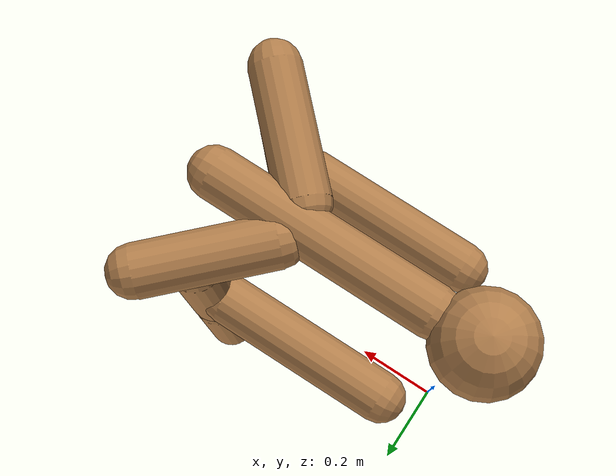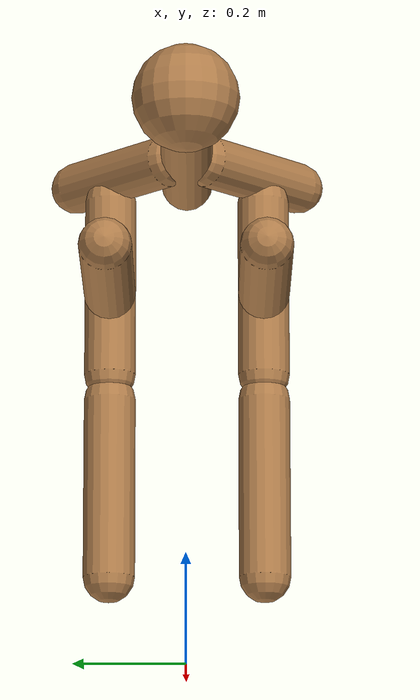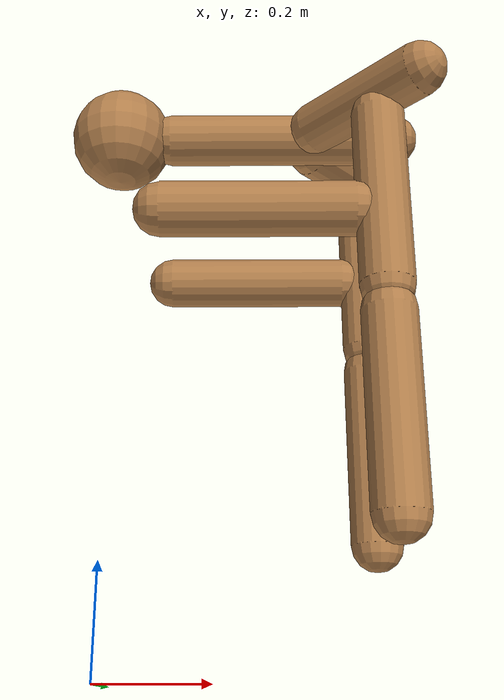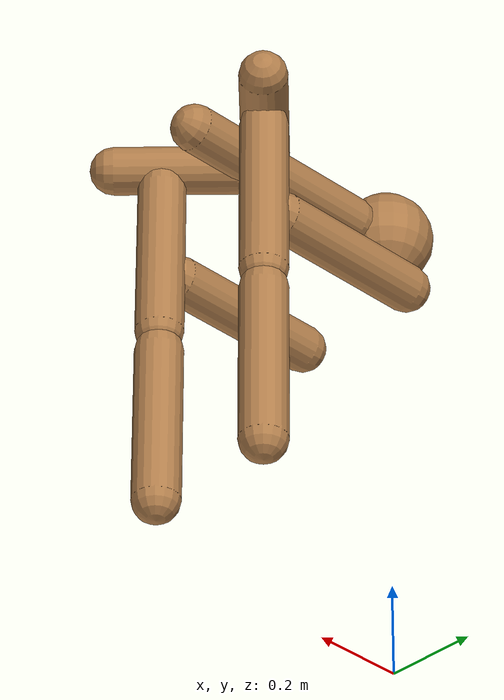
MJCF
<?xml version='1.0' encoding='UTF-8'?>
<!-- Universal Animal Template: unimal -->
<mujoco model="unimal">
  <compiler angle="degree"/>
  <size njmax="2000" nconmax="500"/>
  <option timestep=".005">
    <flag filterparent="disable"/>
  </option>
  <!-- Common defaults to make search space tractable -->
  <default>
    <!-- Define motor defaults -->
    <motor ctrlrange="-1 1" ctrllimited="true"/>
    <!-- Define joint defaults -->
    <default class="normal_joint">
      <joint type="hinge" damping="1" stiffness="1" armature="1" limited="true" range="-120 120" solimplimit="0 0.99 0.01"/>
    </default>
    <default class="walker_joint">
      <joint type="hinge" damping="0.2" stiffness="1" armature=".01" limited="true" range="-120 120" solimplimit="0 0.99 0.01"/>
    </default>
    <default class="stiff_joint">
      <joint type="hinge" damping="5" stiffness="10" armature=".01" limited="true" solimplimit="0 0.99 0.01"/>
    </default>
    <default class="free">
      <joint limited="false" damping="0" armature="0" stiffness="0"/>
    </default>
    <default class="growth_site">
      <site size="1e-6 1e-6 1e-6"/>
    </default>
    <default class="torso_growth_site">
      <site size="1e-6 1e-6 1e-6"/>
    </default>
    <default class="mirror_growth_site">
      <site size="1e-6 1e-6 1e-6"/>
    </default>
    <default class="btm_pos_site">
      <site size="1e-6 1e-6 1e-6"/>
    </default>
    <default class="box_face_site">
      <site size="1e-6 1e-6 1e-6"/>
    </default>
    <default class="imu_vel">
      <site type="box" size="0.05" rgba="1 0 0 0"/>
    </default>
    <default class="touch_site">
      <site group="3" rgba="0 0 1 .3"/>
    </default>
    <default class="food_site">
      <site material="food" size="0.15"/>
    </default>
    <!-- Define geom defaults -->
    <geom type="capsule" condim="3" friction="0.7 0.1 0.1" material="self"/>
  </default>
  <worldbody>
    <light diffuse="1 1 1" directional="true" exponent="1" pos="0 0 8" specular="0.1 0.1 0.1" dir="0 0 -1"/>
    <!-- Programatically generated xml goes here -->
    <body name="torso/0" pos="0 0 1.05">
      <joint name="root" type="free" class="free"/>
      <site name="root" class="imu_vel"/>
      <geom name="torso/0" type="sphere" size="0.1" condim="3" density="900"/>
      <camera name="side" pos="0 -7 2" xyaxes="1 0 0 0 1 2" mode="trackcom"/>
      <site name="torso/0" class="growth_site" pos="0 0 0"/>
      <site name="torso/btm_pos/0" class="btm_pos_site" pos="0 0 -0.1"/>
      <site name="torso/touch/0" class="touch_site" size="0.11"/>
      <site name="torso/horizontal_y/0" class="torso_growth_site" pos="-0.1 0 0"/>
      <body name="limb/15" pos="0.1 0.0 0.0">
        <joint name="limbx/15" type="hinge" class="normal_joint" range="-60 0" pos="-0.05 0.0 0.0" axis="0.0 0.0 1.0"/>
        <geom name="limb/15" type="capsule" fromto="0.0 0.0 0.0 0.45 0.0 0.0" size="0.05" density="1000"/>
        <site name="limb/mid/15" class="growth_site" pos="0.25 0.0 0.0"/>
        <site name="limb/btm/15" class="growth_site" pos="0.45 0.0 0.0"/>
        <site name="limb/btm_pos/15" class="btm_pos_site" pos="0.45 0.0 0.0"/>
        <site name="limb/touch/15" class="touch_site" size="0.060000000000000005" fromto="0.0 0.0 0.0 0.45 0.0 0.0" type="capsule"/>
        <body name="limb/16" pos="0.29 0.04 0.0">
          <joint name="limby/16" type="hinge" class="normal_joint" range="-90 0" pos="-0.04 -0.04 0.0" axis="-0.5 0.5 0.7071"/>
          <geom name="limb/16" type="capsule" fromto="0.0 0.0 0.0 0.18 0.18 0.0" size="0.05" density="1000"/>
          <site name="limb/mid/16" class="mirror_growth_site" pos="0.11 0.11 0.0"/>
          <site name="limb/btm/16" class="mirror_growth_site" pos="0.18 0.18 0.0"/>
          <site name="limb/btm_pos/16" class="btm_pos_site" pos="0.18 0.18 0.0"/>
          <site name="limb/touch/16" class="touch_site" size="0.060000000000000005" fromto="0.0 0.0 0.0 0.18 0.18 0.0" type="capsule"/>
          <body name="limb/18" pos="0.11 0.11 -0.05">
            <joint name="limbx/18" type="hinge" class="normal_joint" range="0 45" pos="0.0 0.0 0.05" axis="1.0 0.0 0.0"/>
            <joint name="limby/18" type="hinge" class="normal_joint" range="0 30" pos="0.0 0.0 0.05" axis="0.0 1.0 0.0"/>
            <geom name="limb/18" type="capsule" fromto="0.0 0.0 0.0 0.0 0.0 -0.35" size="0.05" density="1000"/>
            <site name="limb/mid/18" class="mirror_growth_site" pos="0.0 0.0 -0.2"/>
            <site name="limb/btm/18" class="mirror_growth_site" pos="0.0 0.0 -0.35"/>
            <site name="limb/btm_pos/18" class="btm_pos_site" pos="0.0 0.0 -0.4"/>
            <site name="limb/touch/18" class="touch_site" size="0.060000000000000005" fromto="0.0 0.0 0.0 0.0 0.0 -0.35" type="capsule"/>
            <body name="limb/20" pos="-0.05 0.0 -0.2">
              <joint name="limbx/20" type="hinge" class="normal_joint" range="-30 0" pos="0.05 0.0 0.0" axis="0.0 0.0 -1.0"/>
              <geom name="limb/20" type="capsule" fromto="0.0 0.0 0.0 -0.35 0.0 0.0" size="0.05" density="1000"/>
              <site name="limb/mid/20" class="mirror_growth_site" pos="-0.2 0.0 0.0"/>
              <site name="limb/btm/20" class="mirror_growth_site" pos="-0.35 0.0 0.0"/>
              <site name="limb/btm_pos/20" class="btm_pos_site" pos="-0.4 0.0 0.0"/>
              <site name="limb/touch/20" class="touch_site" size="0.060000000000000005" fromto="0.0 0.0 0.0 -0.35 0.0 0.0" type="capsule"/>
            </body>
            <body name="limb/22" pos="0.0 0.0 -0.39999999999999997">
              <joint name="limbx/22" type="hinge" class="normal_joint" range="-30 30" pos="0.0 0.0 0.05" axis="1.0 0.0 0.0"/>
              <joint name="limby/22" type="hinge" class="normal_joint" range="0 30" pos="0.0 0.0 0.05" axis="0.0 1.0 0.0"/>
              <geom name="limb/22" type="capsule" fromto="0.0 0.0 0.0 0.0 0.0 -0.35" size="0.05" density="1000"/>
              <site name="limb/mid/22" class="mirror_growth_site" pos="0.0 0.0 -0.2"/>
              <site name="limb/btm/22" class="mirror_growth_site" pos="0.0 0.0 -0.35"/>
              <site name="limb/btm_pos/22" class="btm_pos_site" pos="0.0 0.0 -0.4"/>
              <site name="limb/touch/22" class="touch_site" size="0.060000000000000005" fromto="0.0 0.0 0.0 0.0 0.0 -0.35" type="capsule"/>
            </body>
          </body>
        </body>
        <body name="limb/17" pos="0.29 -0.04 0.0">
          <joint name="limby/17" type="hinge" class="normal_joint" range="-90 0" pos="-0.04 0.04 0.0" axis="0.5 0.5 -0.7071"/>
          <geom name="limb/17" type="capsule" fromto="0.0 0.0 0.0 0.18 -0.18 0.0" size="0.05" density="1000"/>
          <site name="limb/mid/17" class="mirror_growth_site" pos="0.11 -0.11 0.0"/>
          <site name="limb/btm/17" class="mirror_growth_site" pos="0.18 -0.18 0.0"/>
          <site name="limb/btm_pos/17" class="btm_pos_site" pos="0.18 -0.18 0.0"/>
          <site name="limb/touch/17" class="touch_site" size="0.060000000000000005" fromto="0.0 0.0 0.0 0.18 -0.18 0.0" type="capsule"/>
          <body name="limb/19" pos="0.11 -0.11 -0.05">
            <joint name="limbx/19" type="hinge" class="normal_joint" range="0 45" pos="0.0 0.0 0.05" axis="1.0 0.0 0.0"/>
            <joint name="limby/19" type="hinge" class="normal_joint" range="0 30" pos="0.0 0.0 0.05" axis="0.0 1.0 0.0"/>
            <geom name="limb/19" type="capsule" fromto="0.0 0.0 0.0 0.0 0.0 -0.35" size="0.05" density="1000"/>
            <site name="limb/mid/19" class="mirror_growth_site" pos="0.0 0.0 -0.2"/>
            <site name="limb/btm/19" class="mirror_growth_site" pos="0.0 0.0 -0.35"/>
            <site name="limb/btm_pos/19" class="btm_pos_site" pos="0.0 0.0 -0.4"/>
            <site name="limb/touch/19" class="touch_site" size="0.060000000000000005" fromto="0.0 0.0 0.0 0.0 0.0 -0.35" type="capsule"/>
            <body name="limb/21" pos="-0.05 0.0 -0.2">
              <joint name="limbx/21" type="hinge" class="normal_joint" range="-30 0" pos="0.05 0.0 0.0" axis="0.0 0.0 -1.0"/>
              <geom name="limb/21" type="capsule" fromto="0.0 0.0 0.0 -0.35 0.0 0.0" size="0.05" density="1000"/>
              <site name="limb/mid/21" class="mirror_growth_site" pos="-0.2 0.0 0.0"/>
              <site name="limb/btm/21" class="mirror_growth_site" pos="-0.35 0.0 0.0"/>
              <site name="limb/btm_pos/21" class="btm_pos_site" pos="-0.4 0.0 0.0"/>
              <site name="limb/touch/21" class="touch_site" size="0.060000000000000005" fromto="0.0 0.0 0.0 -0.35 0.0 0.0" type="capsule"/>
            </body>
            <body name="limb/23" pos="0.0 0.0 -0.39999999999999997">
              <joint name="limbx/23" type="hinge" class="normal_joint" range="-30 30" pos="0.0 0.0 0.05" axis="1.0 0.0 0.0"/>
              <joint name="limby/23" type="hinge" class="normal_joint" range="0 30" pos="0.0 0.0 0.05" axis="0.0 1.0 0.0"/>
              <geom name="limb/23" type="capsule" fromto="0.0 0.0 0.0 0.0 0.0 -0.35" size="0.05" density="1000"/>
              <site name="limb/mid/23" class="mirror_growth_site" pos="0.0 0.0 -0.2"/>
              <site name="limb/btm/23" class="mirror_growth_site" pos="0.0 0.0 -0.35"/>
              <site name="limb/btm_pos/23" class="btm_pos_site" pos="0.0 0.0 -0.4"/>
              <site name="limb/touch/23" class="touch_site" size="0.060000000000000005" fromto="0.0 0.0 0.0 0.0 0.0 -0.35" type="capsule"/>
            </body>
          </body>
        </body>
      </body>
    </body>
  </worldbody>
  <actuator>
    <motor joint="limbx/15" gear="150" name="limbx/15"/>
    <motor joint="limby/16" gear="250" name="limby/16"/>
    <motor joint="limbx/18" gear="200" name="limbx/18"/>
    <motor joint="limby/18" gear="300" name="limby/18"/>
    <motor joint="limbx/20" gear="300" name="limbx/20"/>
    <motor joint="limbx/22" gear="250" name="limbx/22"/>
    <motor joint="limby/22" gear="300" name="limby/22"/>
    <motor joint="limby/17" gear="250" name="limby/17"/>
    <motor joint="limbx/19" gear="200" name="limbx/19"/>
    <motor joint="limby/19" gear="300" name="limby/19"/>
    <motor joint="limbx/21" gear="300" name="limbx/21"/>
    <motor joint="limbx/23" gear="250" name="limbx/23"/>
    <motor joint="limby/23" gear="300" name="limby/23"/>
  </actuator>
  <sensor>
    <accelerometer name="torso_accel" site="root"/>
    <gyro name="torso_gyro" site="root"/>
    <velocimeter name="torso_vel" site="root"/>
    <subtreeangmom name="unimal_am" body="torso/0"/>
    <touch name="torso/0" site="torso/touch/0"/>
    <touch name="limb/15" site="limb/touch/15"/>
    <touch name="limb/16" site="limb/touch/16"/>
    <touch name="limb/18" site="limb/touch/18"/>
    <touch name="limb/20" site="limb/touch/20"/>
    <touch name="limb/22" site="limb/touch/22"/>
    <touch name="limb/17" site="limb/touch/17"/>
    <touch name="limb/19" site="limb/touch/19"/>
    <touch name="limb/21" site="limb/touch/21"/>
    <touch name="limb/23" site="limb/touch/23"/>
  </sensor>
  <!-- Add hfield assets -->
  <asset/>
  <!-- List of contacts to exclude -->
  <contact>
    <exclude name="limb/16:limb/17" body1="limb/16" body2="limb/17"/>
  </contact>
  <!-- Define material, texture etc -->
  <asset>
    <material name="grid" texture="grid" texrepeat="1 1" texuniform="true" reflectance="0.1"/>
    <material name="hfield" texture="hfield" texrepeat="1 1" texuniform="true" reflectance="0.1"/>
    <material name="wall" texture="wall" texrepeat="1 1" texuniform="true" reflectance=".5"/>
    <material name="platform" texture="platform" texrepeat="1 1" texuniform="true" reflectance=".5"/>
    <material name="boundary" texture="boundary" texrepeat="1 1" texuniform="true" reflectance=".5"/>
    <material name="jump" texture="jump" texrepeat="1 1" texuniform="true" reflectance=".5"/>
    <material name="goal" rgba="1 0 0 1"/>
    <material name="food" rgba="0 0 1 1" emission="1"/>
    <material name="init_position" rgba="0 1 0 0.7"/>
    <material name="self" rgba=".7 .5 .3 1"/>
    <material name="self_invisible" rgba=".7 .5 .3 0"/>
    <material name="self_default" rgba=".7 .5 .3 1"/>
    <material name="self_highlight" rgba="0 .5 .3 1"/>
    <material name="effector" rgba=".7 .4 .2 1"/>
    <material name="effector_default" rgba=".7 .4 .2 1"/>
    <material name="effector_highlight" rgba="0 .5 .3 1"/>
    <material name="decoration" rgba=".3 .5 .7 1"/>
    <material name="eye" rgba="0 .2 1 1"/>
    <material name="target" rgba=".6 .3 .3 1"/>
    <material name="target_default" rgba=".6 .3 .3 1"/>
    <material name="target_highlight" rgba=".6 .3 .3 .4"/>
    <material name="site" rgba=".5 .5 .5 .3"/>
    <material name="ball" texture="ball"/>
  </asset>
  <asset>
    <texture name="grid" type="2d" builtin="checker" rgb1="0.4 0.4 0.4" rgb2="0.4 0.4 0.4" width="300" height="300" mark="edge" markrgb="0.2 0.2 0.2"/>
    <texture name="hfield" type="2d" builtin="checker" rgb1="0.4 0.4 0.4" rgb2="0.4 0.4 0.4" width="300" height="300" mark="edge" markrgb="0.2 0.2 0.2"/>
    <texture name="wall" type="2d" builtin="flat" rgb1="0.9 0.7 0" rgb2="0.9 0.7 0" width="300" height="300"/>
    <texture name="platform" type="2d" builtin="flat" rgb1="0.3 0 0.8" rgb2="0.3 0 0.8" width="300" height="300"/>
    <texture name="boundary" type="2d" builtin="flat" rgb1="0.3 0.3 0.3" rgb2="0.3 0.3 0.3" width="300" height="300"/>
    <texture name="jump" type="2d" builtin="flat" rgb1="0.3 0.3 0.3" rgb2="0.3 0.3 0.3" width="300" height="300"/>
    <texture name="skybox" type="skybox" builtin="gradient" rgb1="1 1 1" rgb2="0.6 0.6 0.6" width="800" height="800"/>
    <texture name="ball" builtin="checker" mark="cross" width="151" height="151" rgb1="0.1 0.1 0.1" rgb2="0.9 0.9 0.9" markrgb="1 1 1"/>
  </asset>
  <visual>
    <headlight ambient="0.6 0.6 0.6" diffuse="0.3 0.3 0.3" specular="0 0 0"/>
    <map znear=".01" shadowclip="0.5"/>
    <quality shadowsize="16384"/>
  </visual>
</mujoco>
